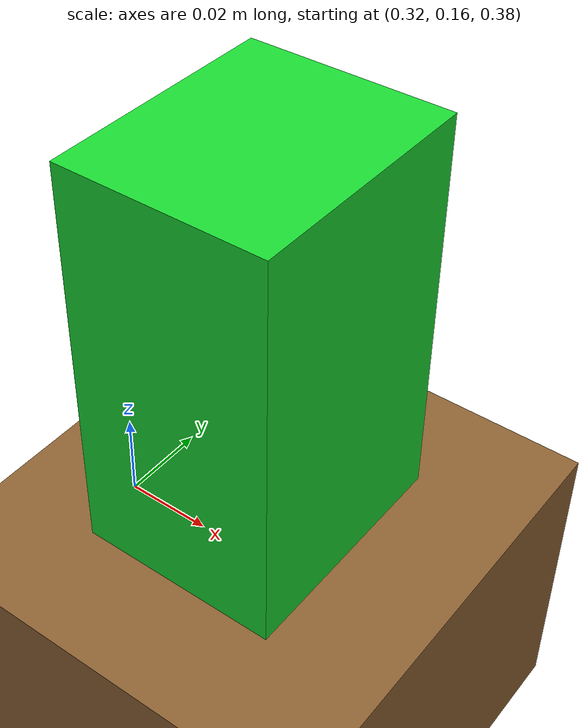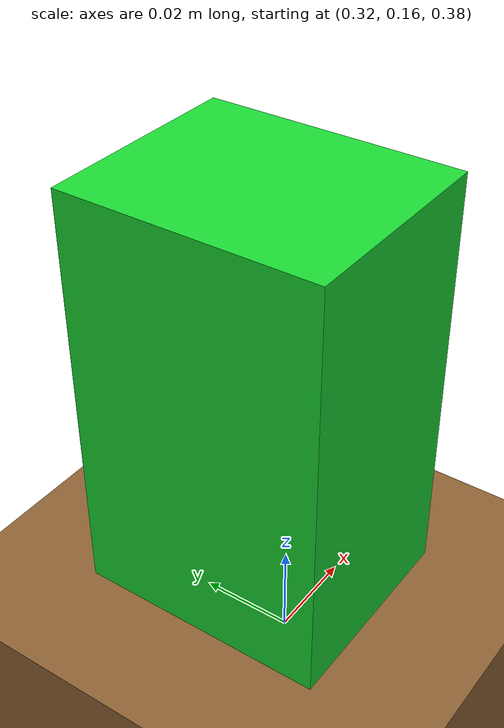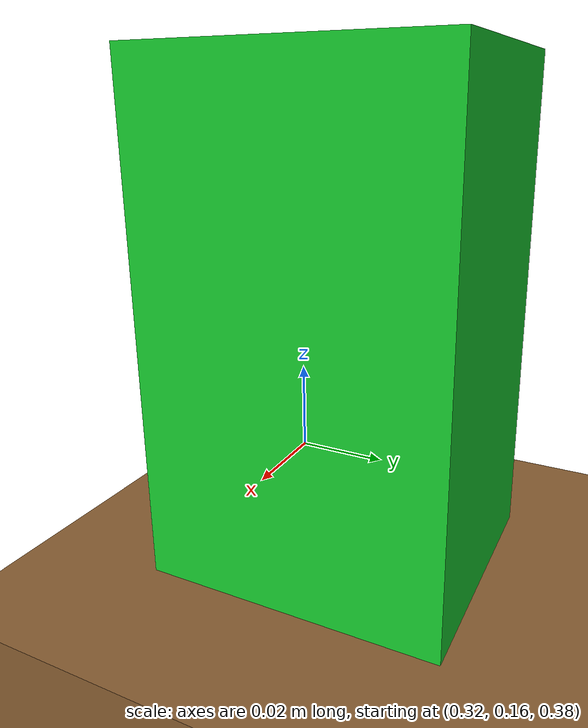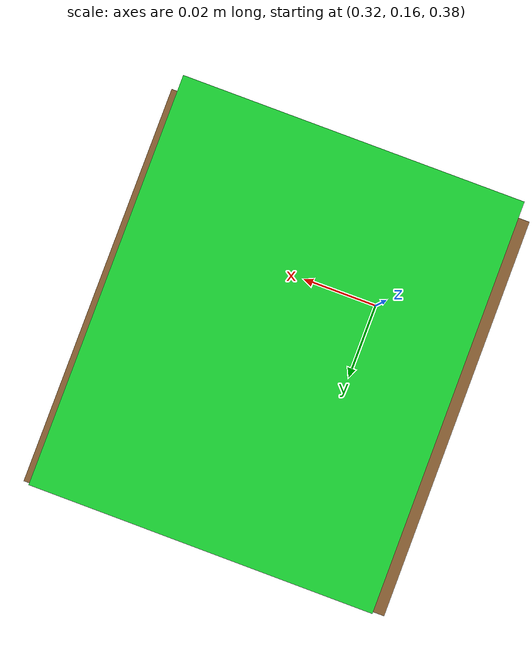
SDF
<?xml version="1.0"?>
<sdf version="1.6">
  <world name="handarm_physical_grasp">
    <gravity>0 0 -9.81</gravity>
    <physics name="ode" type="ode">
      <max_step_size>0.001</max_step_size>
      <real_time_update_rate>1000</real_time_update_rate>
      <ode>
        <solver>
          <type>quick</type>
          <iters>100</iters>
          <sor>1.3</sor>
        </solver>
        <constraints>
          <cfm>0.0</cfm>
          <erp>0.2</erp>
          <contact_max_correcting_vel>0.1</contact_max_correcting_vel>
          <contact_surface_layer>0.001</contact_surface_layer>
        </constraints>
      </ode>
    </physics>
    <include><uri>model://ground_plane</uri></include>
    <include><uri>model://sun</uri></include>

    <model name="work_table">
      <static>true</static>
      <pose>0.65 0 0.33 0 0 0</pose>
      <link name="table_link">
        <collision name="collision">
          <geometry><box><size>0.80 0.90 0.08</size></box></geometry>
          <surface>
            <friction><ode><mu>1.2</mu><mu2>1.2</mu2></ode></friction>
            <contact><ode><kp>1000000</kp><kd>10</kd><max_vel>0.1</max_vel><min_depth>0.001</min_depth></ode></contact>
          </surface>
        </collision>
        <visual name="visual">
          <geometry><box><size>0.80 0.90 0.08</size></box></geometry>
          <material><ambient>0.35 0.25 0.15 1</ambient><diffuse>0.55 0.38 0.20 1</diffuse></material>
        </visual>
      </link>
    </model>

    <model name="target_object">
      <static>false</static>
      <pose>0.34 0.18 0.42 0 0 0</pose>
      <link name="object_link">
        <inertial>
          <mass>0.10</mass>
          <inertia>
            <ixx>0.0001133333</ixx><iyy>0.0001041667</iyy><izz>0.0000508333</izz>
          </inertia>
        </inertial>
        <collision name="collision">
          <geometry><box><size>0.05 0.06 0.10</size></box></geometry>
          <surface>
            <friction>
              <ode><mu>1.5</mu><mu2>1.5</mu2><slip1>0.0</slip1><slip2>0.0</slip2></ode>
            </friction>
            <contact><ode><kp>1000000</kp><kd>10</kd><max_vel>0.1</max_vel><min_depth>0.001</min_depth></ode></contact>
          </surface>
        </collision>
        <visual name="visual">
          <geometry><box><size>0.05 0.06 0.10</size></box></geometry>
          <material><ambient>0.10 0.65 0.15 1</ambient><diffuse>0.10 0.85 0.20 1</diffuse></material>
        </visual>
        <sensor name="target_contact_sensor" type="contact">
          <always_on>true</always_on>
          <update_rate>100.0</update_rate>
          <contact><collision>collision</collision></contact>
          <plugin name="target_contact_reporter" filename="libgazebo_ros_bumper.so">
            <alwaysOn>true</alwaysOn>
            <updateRate>100.0</updateRate>
            <frameName>world</frameName>
            <bumperTopicName>/handarm_sim_demo/target_contacts</bumperTopicName>
          </plugin>
        </sensor>
      </link>
    </model>

    <scene><ambient>0.5 0.5 0.5 1</ambient><background>0.7 0.7 0.7 1</background></scene>
    <gui fullscreen="0">
      <camera name="user_camera">
        <!-- Close, repeatable view of the hand, table and target. -->
        <pose>1.4 -1.2 1.2 0 0.37 2.23</pose>
        <view_controller>orbit</view_controller>
        <projection_type>perspective</projection_type>
      </camera>
    </gui>
  </world>
</sdf>
